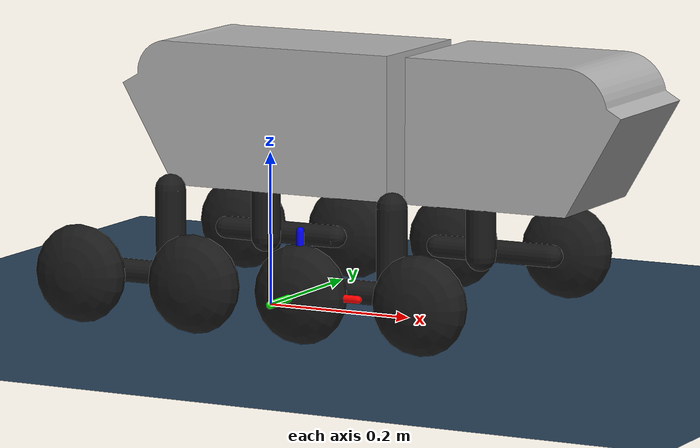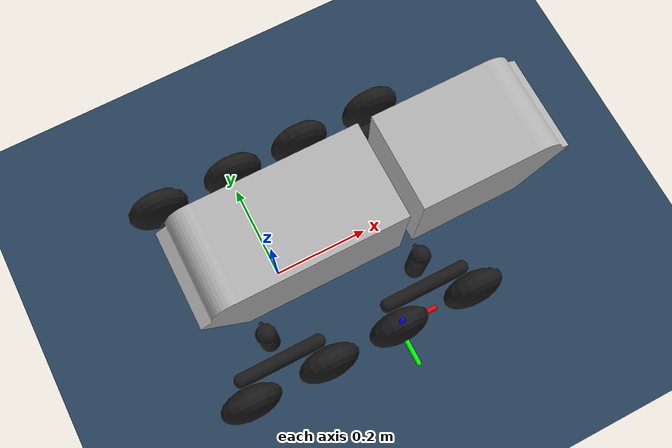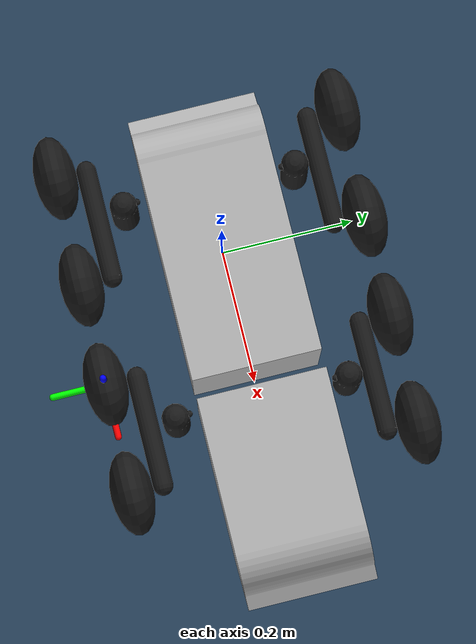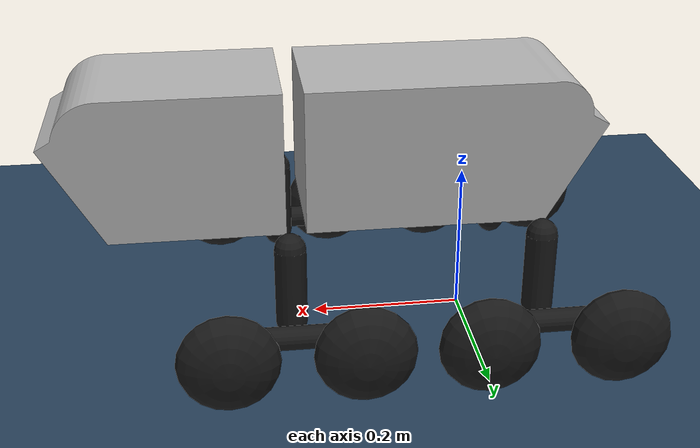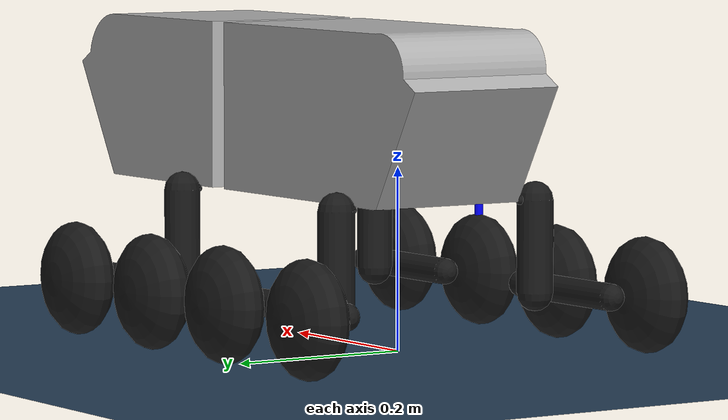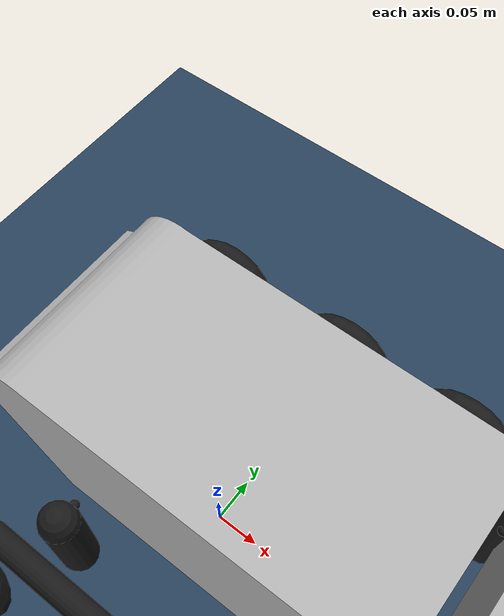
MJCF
<mujoco model="walter_sr scene">
  <include file="walter_sr_v3.xml"/>

  <statistic center="0 0 0.1" extent="0.8"/>

  <visual>
    <headlight diffuse="0.6 0.6 0.6" ambient="0.3 0.3 0.3" specular="0 0 0"/>
    <rgba haze="0.15 0.25 0.35 1"/>
    <global azimuth="120" elevation="-20"/>
  </visual>

  <asset>
    <texture type="skybox" builtin="gradient" rgb1="0.3 0.5 0.7" rgb2="0 0 0" width="512" height="3072"/>
    <texture type="2d" name="groundplane" builtin="checker" mark="edge" rgb1="0.2 0.3 0.4" rgb2="0.1 0.2 0.3"
      markrgb="0.8 0.8 0.8" width="300" height="300"/>
    <material name="groundplane" texture="groundplane" texuniform="true" texrepeat="5 5" reflectance="0.2"/>
    <material name="wood" rgba="0.7 0.5 0.3 1"/>
  </asset>

  <worldbody>
    <light pos="0 0 1.5" dir="0 0 -1" directional="true"/>
    <camera name="default" pos="0.846 -1.465 0.916" xyaxes="0.866 0.500 0.000 -0.171 0.296 0.940"/>
    <geom name="floor" size="0 0 0.05" type="plane" material="groundplane" solref="0.01 1.0"/>
    <!-- stairs -->
    <!-- stairs -->

  </worldbody>

</mujoco>

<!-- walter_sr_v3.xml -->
<mujoco model="MuJoCo Model">
  <compiler angle="radian" autolimits="false"/>

    <asset>
        <mesh name="torso_mesh" file="torso.STL"/>
        <mesh name="head_mesh" file="head.STL"/>
        <material name="aluminum" rgba="0.7 0.7 0.7 1" shininess="0.7" reflectance="0.7"/>
        <material name="black_plastic" rgba="0.1 0.1 0.1 1.0" specular="0.5" shininess="0.5"/>
    </asset>

  <default>
    <general ctrllimited="true"/>
  </default>

    <!-- When adding sites, make sure to update autogen and config     -->

  <worldbody>
    <body name="torso" pos="0 0 0.165">
      <site name="torso_site" pos="0.188 0 0.08" type="sphere" material="black_plastic"/>
      <joint name="torso_joint" type="free" limited="false" actuatorfrclimited="false"/>
      <geom type="mesh" mesh="torso_mesh" pos="-0.165 -0.09445625 0" mass="8.201" material="aluminum"/>

      <body name="torso_left_thigh" pos="-0.0761 0.10795 0">
        <joint name="torso_left_thigh_joint" pos="0 0 0" axis="0 1 0" armature="0.0072" damping="0.0"/>
        <geom name="torso_left_thigh_geom" size="0.02 0.0508" pos="0 0.02 -0.0508" type="capsule" mass="0.461" material="black_plastic"/>
        <site name="tl_thigh_site" pos="0 0 0" material="black_plastic"/>

        <body name="torso_left_shin" pos="0 0.06135 -0.1016">
          <joint name="torso_left_thigh_shin_joint" pos="0 0 0" axis="0 1 0" armature="0.01805" damping="0.0"/>
          <geom name="torso_left_shin_geom" size="0.015 0.08255" quat="0.707107 0 0.707107 0" type="capsule" mass="0.305" material="black_plastic"/>
          <site name="tl_shin_site" pos="0 0 0" material="black_plastic"/>

          <body name="torso_left_front_wheel" pos="0.08255 0.04675 0">
            <geom name="torso_left_front_wheel_geom" size="0.0635 0.0635 0.03175" quat="0.707107 0.707107 0 0" type="ellipsoid" solref="0.01 1.0" mass="0.873" material="black_plastic"/>
            <site name="tlf_wheel_site" pos="0 0 0" size="0.0635 0.0635 0.03175" quat="0.707107 0.707107 0 0" type="ellipsoid" material="black_plastic"/>
          </body>

          <body name="torso_left_rear_wheel" pos="-0.08255 0.04675 0">
            <geom name="torso_left_rear_wheel_geom" size="0.0635 0.0635 0.03175" quat="0.707107 0.707107 0 0" type="ellipsoid" solref="0.01 1.0" mass="0.873" material="black_plastic"/>
            <site name="tlr_wheel_site" pos="0 0 0" size="0.0635 0.0635 0.03175" quat="0.707107 0.707107 0 0" type="ellipsoid" material="black_plastic"/>
          </body>
        </body>
      </body>

      <body name="torso_right_thigh" pos="-0.0761 -0.10795 0">
        <joint name="torso_right_thigh_joint" pos="0 0 0" axis="0 1 0" armature="0.0072" damping="0.0"/>
        <geom name="torso_right_thigh_geom" size="0.02 0.0508" pos="0 -0.02 -0.0508" type="capsule" mass="0.461" material="black_plastic"/>
        <site name="tr_thigh_site" pos="0 0 0" material="black_plastic"/>

        <body name="torso_right_shin" pos="0 -0.06135 -0.1016">
          <joint name="torso_right_thigh_shin_joint" pos="0 0 0" axis="0 1 0" armature="0.01805" damping="0.0"/>
          <geom name="torso_right_shin_geom" size="0.015 0.08255" quat="0.707107 0 0.707107 0" type="capsule" mass="0.305" material="black_plastic"/>
          <site name="tr_shin_site" pos="0 0 0" material="black_plastic"/>

          <body name="torso_right_front_wheel" pos="0.08255 -0.04675 0">
            <geom name="torso_right_front_wheel_geom" size="0.0635 0.0635 0.03175" quat="0.707107 0.707107 0 0" type="ellipsoid" solref="0.01 1.0" mass="0.873" material="black_plastic"/>
            <site name="trf_wheel_site" pos="0 0 0" size="0.0635 0.0635 0.03175" quat="0.707107 0.707107 0 0" type="ellipsoid" material="black_plastic"/>
          </body>

          <body name="torso_right_rear_wheel" pos="-0.08255 -0.04675 0">
            <geom name="torso_right_rear_wheel_geom" size="0.0635 0.0635 0.03175" quat="0.707107 0.707107 0 0" type="ellipsoid" solref="0.01 1.0" mass="0.873" material="black_plastic"/>
            <site name="trr_wheel_site" pos="0 0 0" size="0.0635 0.0635 0.03175" quat="0.707107 0.707107 0 0" type="ellipsoid" material="black_plastic"/>
          </body>
        </body>
      </body>

      <body name="head" pos="0.165 0 0">
        <geom type="mesh" mesh="head_mesh" pos="-0.33 -0.09445625 0" mass="8.201" material="aluminum"/>

        <body name="head_left_thigh" pos="0.0761 0.10795 0">
          <joint name="head_left_thigh_joint" pos="0 0 0" axis="0 1 0" armature="0.0072" damping="0.0"/>
          <geom name="head_left_thigh_geom" size="0.02 0.0508" pos="0 0.02 -0.0508" type="capsule" mass="0.461" material="black_plastic"/>
          <site name="hl_thigh_site" pos="0 0 0" material="black_plastic"/>

          <body name="head_left_shin" pos="0 0.06135 -0.1016">
            <joint name="head_left_thigh_shin_joint" pos="0 0 0" axis="0 1 0" armature="0.01805" damping="0.0"/>
            <geom name="head_left_shin_geom" size="0.015 0.08255" quat="0.707107 0 0.707107 0" type="capsule" mass="0.305" material="black_plastic"/>
            <site name="hl_shin_site" pos="0 0 0" material="black_plastic"/>

            <body name="head_left_front_wheel" pos="0.08255 0.04675 0">
              <geom name="head_left_front_wheel_geom" size="0.0635 0.0635 0.03175" quat="0.707107 0.707107 0 0" type="ellipsoid" solref="0.01 1.0" mass="0.873" material="black_plastic"/>
              <site name="hlf_wheel_site" pos="0 0 0" size="0.0635 0.0635 0.03175" quat="0.707107 0.707107 0 0" type="ellipsoid" material="black_plastic"/>
            </body>

            <body name="head_left_rear_wheel" pos="-0.08255 0.04675 0">
              <geom name="head_left_rear_wheel_geom" size="0.0635 0.0635 0.03175" quat="0.707107 0.707107 0 0" type="ellipsoid" solref="0.01 1.0" mass="0.873" material="black_plastic"/>
              <site name="hlr_wheel_site" pos="0 0 0" size="0.0635 0.0635 0.03175" quat="0.707107 0.707107 0 0" type="ellipsoid" material="black_plastic"/>
              </body>
          </body>
        </body>

        <body name="head_right_thigh" pos="0.0761 -0.10795 0">
          <joint name="head_right_thigh_joint" pos="0 0 0" axis="0 1 0" armature="0.0072" damping="0.0"/>
          <geom name="head_right_thigh_geom" size="0.02 0.0508" pos="0 -0.02 -0.0508" type="capsule" mass="0.461" material="black_plastic"/>
          <site name="hr_thigh_site" pos="0 0 0" material="black_plastic"/>

          <body name="head_right_shin" pos="0 -0.06135 -0.1016">
            <joint name="head_right_thigh_shin_joint" pos="0 0 0" axis="0 1 0" armature="0.01805" damping="0.0"/>
            <geom name="head_right_shin_geom" size="0.015 0.08255" quat="0.707107 0 0.707107 0" type="capsule" mass="0.305" material="black_plastic"/>
            <site name="hr_shin_site" pos="0 0 0" material="black_plastic"/>

            <body name="head_right_front_wheel" pos="0.08255 -0.04675 0">
              <geom name="head_right_front_wheel_geom" size="0.0635 0.0635 0.03175" quat="0.707107 0.707107 0 0" type="ellipsoid" solref="0.01 1.0" mass="0.873" material="black_plastic"/>
              <site name="hrf_wheel_site" pos="0 0 0" size="0.0635 0.0635 0.03175" quat="0.707107 0.707107 0 0" type="ellipsoid" material="black_plastic"/>
            </body>

            <body name="head_right_rear_wheel" pos="-0.08255 -0.04675 0">
              <geom name="head_right_rear_wheel_geom" size="0.0635 0.0635 0.03175" quat="0.707107 0.707107 0 0" type="ellipsoid" solref="0.01 1.0" mass="0.873" material="black_plastic"/>
              <site name="hrr_wheel_site" pos="0 0 0" size="0.0635 0.0635 0.03175" quat="0.707107 0.707107 0 0" type="ellipsoid" material="black_plastic"/>
              <site name="hrr_xaxis" type="capsule" size="0.005 0.04" pos="0.04 0 0" quat="0.707107 0 0.707107 0" rgba="1 0 0 1"/>
              <site name="hrr_yaxis" type="capsule" size="0.005 0.04" pos="0 -0.04 0" quat="0.707107 -0.707107 0 0" rgba="0 1 0 1"/>
              <site name="hrr_zaxis" type="capsule" size="0.005 0.04" pos="0 0 0.04" quat="1 0 0 0" rgba="0 0 1 1"/>
            </body>
          </body>
        </body>
      </body>
    </body>
  </worldbody>

  <actuator>
    <general name="bl_hip" joint="torso_left_thigh_joint" ctrllimited="true" ctrlrange="-100 100"/>
    <general name="bl_knee" joint="torso_left_thigh_shin_joint" ctrllimited="true" ctrlrange="-100 100"/>
    <general name="br_hip" joint="torso_right_thigh_joint" ctrllimited="true" ctrlrange="-100 100"/>
    <general name="br_knee" joint="torso_right_thigh_shin_joint" ctrllimited="true" ctrlrange="-100 100"/>
    <general name="fl_hip" joint="head_left_thigh_joint" ctrllimited="true" ctrlrange="-100 100"/>
    <general name="fl_knee" joint="head_left_thigh_shin_joint" ctrllimited="true" ctrlrange="-100 100"/>
    <general name="fr_hip" joint="head_right_thigh_joint" ctrllimited="true" ctrlrange="-100 100"/>
    <general name="fr_knee" joint="head_right_thigh_shin_joint" ctrllimited="true" ctrlrange="-100 100"/>
  </actuator>

  <sensor>
    <force  name="hrf_wheel_force_sensor"  site="hlr_wheel_site"/>
    <torque name="hrf_wheel_torque_sensor" site="hlr_wheel_site"/>
    <accelerometer name="body_accel" site="torso_site"/>
    <gyro name="body_gyro" site="torso_site"/>
  </sensor>

    <!-- key frame has 0,0 for wheel sites because the bodies have the positions fixed/initialized (k0 - z -) -->
    <keyframe>
      <key name="home"
        qpos="0 0 0.1675 1 0 0 0
              0 0
              0 0
              0 0
              0 0"
        ctrl="0 0
              0 0
              0 0
              0 0"/>
      <key name="flat"
        qpos='0 0 0.05 1 0 0 0 1.71253 -1.71287 1.71253 -1.71287 -1.71253 1.71287 -1.71253 1.71287'
        ctrl="0 0
              0 0
              0 0
              0 0"/>
      <key name="flat_up"
        qpos='0.0898423 -0.0025112 0.05 1 0 0 0 3.14 3.14 3.14 3.14 3.14 3.14 3.14 3.14'
        ctrl="0 0
              0 0
              0 0
              0 0"/>
      <key name="fortumbling"
        qpos="0 0 0.13 1 0 0 0
              1.5708 0
              1.5708 0
              -1.5708 0
              -1.5708 0"
        ctrl="0 0
              0 0
              0 0
              0 0"/>
      <key name="fortumbling2"
        qpos="0 0 0.13 1 0 0 0
              0.659736 -0.659736
              0.659736 -0.659736
              -0.659736 0.659736
              -0.659736 0.659736"
        ctrl="0 0
              0 0
              0 0
              0 0"/>
      <key name="shinup30deg"
        qpos="0 0 0.19 1 0 0 0
              0.534 0
              0.534 0
              -0.534 0
              -0.534 0"
        ctrl="0 0
              0 0
              0 0
              0 0"/>
      <key name="fortumbling3"
        qpos="0 0 0.145 1 0 0 0
              0.659736 -0.659736
              0.659736 -0.659736
              0.659736 -0.659736
              0.659736 -0.659736"
        ctrl="0 0
              0 0
              0 0
              0 0"/>
      <key name="fortumbling4"
        qpos="0 0 0.1485 1 0 0 0
              0.659736 -0.6
              0.659736 -0.6
              0.659736 -0.6
              0.659736 -0.6"
        ctrl="0 0
              0 0
              0 0
              0 0"/>
      <key name="fortumbling5"
        qpos="0 0 0.1485 1 0 0 0
              -0.723 0.817
              -0.723 0.817
              -0.723 0.817
              -0.723 0.817"
        ctrl="0 0
              0 0
              0 0
              0 0"/>
      <key name="stabletumbling"
        qpos="0 0 0.1455 1 0 0 0
              1.5708 0.031416
              1.5708 0.031416
              1.03673 -0.66
              1.03673 -0.66"
        ctrl="0 0
              0 0
              0 0
              0 0"/>
    </keyframe>
        <!-- qpos='0.0898423 -0.0025112 0.05 1 0 0 0 3.62333 -5.46591 3.62333 -5.46591 3.62333 -5.46591 3.62333 -5.46591 ' -->
</mujoco>
